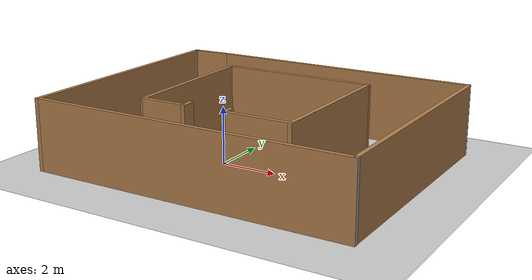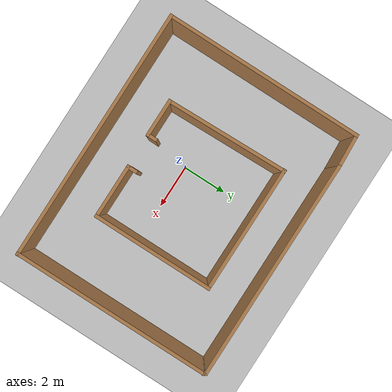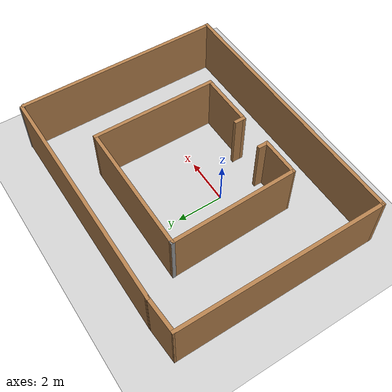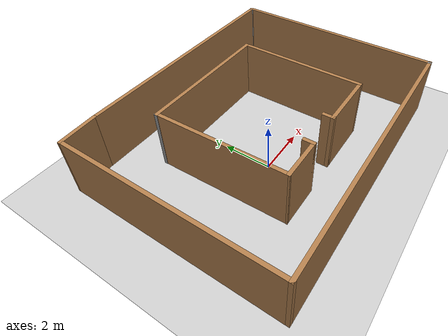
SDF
<sdf version='1.4'>
  <world name='default'>
    <!-- A global light source -->
    <include>
      <uri>model://sun</uri>
    </include>

    <!-- A ground plane -->
    <include>
      <uri>model://ground_plane</uri>
    </include>

    <physics type="ode">
      <real_time_update_rate>1000.0</real_time_update_rate>
      <max_step_size>0.001</max_step_size>
      <real_time_factor>1</real_time_factor>
      <ode>
        <solver>
          <type>quick</type>
          <iters>150</iters>
          <precon_iters>0</precon_iters>
          <sor>1.400000</sor>
          <use_dynamic_moi_rescaling>1</use_dynamic_moi_rescaling>
        </solver>
        <constraints>
          <cfm>0.00001</cfm>
          <erp>0.2</erp>
          <contact_max_correcting_vel>2000.000000</contact_max_correcting_vel>
          <contact_surface_layer>0.01000</contact_surface_layer>
        </constraints>
      </ode>
    </physics>

    <!-- Load world -->
    <include>
      <uri>model://waypoints_wall</uri>
    </include>

    <scene>
      <ambient>0.4 0.4 0.4 1</ambient>
      <background>0.7 0.7 0.7 1</background>
      <shadows>true</shadows>
    </scene>

    <gui fullscreen='0'>
      <camera name='user_camera'>
        <pose>0.8 0.0 12.0 0 1.5708 0</pose>
        <view_controller>orbit</view_controller>
      </camera>
    </gui>
  </world>
</sdf>

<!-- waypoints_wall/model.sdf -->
<sdf version='1.6'>
  <model name='waypoints_wall'>
    <pose frame=''>0.967753 0.769721 0 0 -0 0</pose>
    <link name='Wall_1'>
      <collision name='Wall_1_Collision'>
        <geometry>
          <box>
            <size>1.75 0.15 2.5</size>
          </box>
        </geometry>
        <pose frame=''>0 0 1.25 0 -0 0</pose>
      </collision>
      <visual name='Wall_1_Visual'>
        <pose frame=''>0 0 1.25 0 -0 0</pose>
        <geometry>
          <box>
            <size>1.75 0.15 2.5</size>
          </box>
        </geometry>
        <material>
          <script>
            <uri>file://media/materials/scripts/gazebo.material</uri>
            <name>Gazebo/Wood</name>
          </script>
          <ambient>1 1 1 1</ambient>
        </material>
        <meta>
          <layer>0</layer>
        </meta>
      </visual>
      <pose frame=''>-1.97775 -2.67972 0 0 -0 0</pose>
    </link>
    <link name='Wall_12'>
      <collision name='Wall_12_Collision'>
        <geometry>
          <box>
            <size>5.5 0.15 2.5</size>
          </box>
        </geometry>
        <pose frame=''>0 0 1.25 0 -0 0</pose>
      </collision>
      <visual name='Wall_12_Visual'>
        <pose frame=''>0 0 1.25 0 -0 0</pose>
        <geometry>
          <box>
            <size>5.5 0.15 2.5</size>
          </box>
        </geometry>
        <material>
          <script>
            <uri>file://media/materials/scripts/gazebo.material</uri>
            <name>Gazebo/Wood</name>
          </script>
          <ambient>1 1 1 1</ambient>
        </material>
        <meta>
          <layer>0</layer>
        </meta>
      </visual>
      <pose frame=''>2.68247 0.024048 0 0 -0 1.5708</pose>
    </link>
    <link name='Wall_13'>
      <collision name='Wall_13_Collision'>
        <geometry>
          <box>
            <size>5.75 0.15 2.5</size>
          </box>
        </geometry>
        <pose frame=''>0 0 1.25 0 -0 0</pose>
      </collision>
      <visual name='Wall_13_Visual'>
        <pose frame=''>0 0 1.25 0 -0 0</pose>
        <geometry>
          <box>
            <size>5.75 0.15 2.5</size>
          </box>
        </geometry>
        <material>
          <script>
            <uri>file://media/materials/scripts/gazebo.material</uri>
            <name>Gazebo/Wood</name>
          </script>
          <ambient>1 1 1 1</ambient>
        </material>
        <meta>
          <layer>0</layer>
        </meta>
      </visual>
      <pose frame=''>-0.117528 2.69905 0 0 -0 3.14159</pose>
    </link>
    <link name='Wall_14'>
      <collision name='Wall_14_Collision'>
        <geometry>
          <box>
            <size>0.16 0.15 2.5</size>
          </box>
        </geometry>
        <pose frame=''>0 0 1.25 0 -0 0</pose>
      </collision>
      <visual name='Wall_14_Visual'>
        <pose frame=''>0 0 1.25 0 -0 0</pose>
        <geometry>
          <box>
            <size>0.16 0.15 2.5</size>
          </box>
        </geometry>
        <material>
          <script>
            <uri>file://media/materials/scripts/gazebo.material</uri>
            <name>Gazebo/Grey</name>
          </script>
          <ambient>1 1 1 1</ambient>
        </material>
        <meta>
          <layer>0</layer>
        </meta>
      </visual>
      <pose frame=''>-2.91253 2.69905 0 0 -0 0</pose>
    </link>
    <link name='Wall_15'>
      <collision name='Wall_15_Collision'>
        <geometry>
          <box>
            <size>5.53033 0.15 2.5</size>
          </box>
        </geometry>
        <pose frame=''>0 0 1.25 0 -0 0</pose>
      </collision>
      <visual name='Wall_15_Visual'>
        <pose frame=''>0 0 1.25 0 -0 0</pose>
        <geometry>
          <box>
            <size>5.53033 0.15 2.5</size>
          </box>
        </geometry>
        <material>
          <script>
            <uri>file://media/materials/scripts/gazebo.material</uri>
            <name>Gazebo/Wood</name>
          </script>
          <ambient>1 1 1 1</ambient>
        </material>
        <meta>
          <layer>0</layer>
        </meta>
      </visual>
      <pose frame=''>-2.84264 0.009664 0 0 -0 -1.54667</pose>
    </link>
    <link name='Wall_18'>
      <collision name='Wall_18_Collision'>
        <geometry>
          <box>
            <size>10 0.15 2.5</size>
          </box>
        </geometry>
        <pose frame=''>0 0 1.25 0 -0 0</pose>
      </collision>
      <visual name='Wall_18_Visual'>
        <pose frame=''>0 0 1.25 0 -0 0</pose>
        <geometry>
          <box>
            <size>10 0.15 2.5</size>
          </box>
        </geometry>
        <material>
          <script>
            <uri>file://media/materials/scripts/gazebo.material</uri>
            <name>Gazebo/Wood</name>
          </script>
          <ambient>1 1 1 1</ambient>
        </material>
        <meta>
          <layer>0</layer>
        </meta>
      </visual>
      <pose frame=''>0.683458 4.45458 0 0 -0 0</pose>
    </link>
    <link name='Wall_19'>
      <collision name='Wall_19_Collision'>
        <geometry>
          <box>
            <size>0.25 0.15 2.5</size>
          </box>
        </geometry>
        <pose frame=''>0 0 1.25 0 -0 0</pose>
      </collision>
      <visual name='Wall_19_Visual'>
        <pose frame=''>0 0 1.25 0 -0 0</pose>
        <geometry>
          <box>
            <size>0.25 0.15 2.5</size>
          </box>
        </geometry>
        <material>
          <script>
            <uri>file://media/materials/scripts/gazebo.material</uri>
            <name>Gazebo/Grey</name>
          </script>
          <ambient>1 1 1 1</ambient>
        </material>
        <meta>
          <layer>0</layer>
        </meta>
      </visual>
      <pose frame=''>5.63346 4.41127 0 0 -0 -1.0472</pose>
    </link>
    <link name='Wall_2'>
      <collision name='Wall_2_Collision'>
        <geometry>
          <box>
            <size>0.5 0.15 2.5</size>
          </box>
        </geometry>
        <pose frame=''>0 0 1.25 0 -0 0</pose>
      </collision>
      <visual name='Wall_2_Visual'>
        <pose frame=''>0 0 1.25 0 -0 0</pose>
        <geometry>
          <box>
            <size>0.5 0.15 2.5</size>
          </box>
        </geometry>
        <material>
          <script>
            <uri>file://media/materials/scripts/gazebo.material</uri>
            <name>Gazebo/Wood</name>
          </script>
          <ambient>1 1 1 1</ambient>
        </material>
        <meta>
          <layer>0</layer>
        </meta>
      </visual>
      <pose frame=''>-1.17775 -2.50472 0 0 -0 1.5708</pose>
    </link>
    <link name='Wall_20'>
      <collision name='Wall_20_Collision'>
        <geometry>
          <box>
            <size>9 0.15 2.5</size>
          </box>
        </geometry>
        <pose frame=''>0 0 1.25 0 -0 0</pose>
      </collision>
      <visual name='Wall_20_Visual'>
        <pose frame=''>0 0 1.25 0 -0 0</pose>
        <geometry>
          <box>
            <size>9 0.15 2.5</size>
          </box>
        </geometry>
        <material>
          <script>
            <uri>file://media/materials/scripts/gazebo.material</uri>
            <name>Gazebo/Wood</name>
          </script>
          <ambient>1 1 1 1</ambient>
        </material>
        <meta>
          <layer>0</layer>
        </meta>
      </visual>
      <pose frame=''>5.65846 -0.057027 0 0 -0 -1.5708</pose>
    </link>
    <link name='Wall_21'>
      <collision name='Wall_21_Collision'>
        <geometry>
          <box>
            <size>0.16 0.15 2.5</size>
          </box>
        </geometry>
        <pose frame=''>0 0 1.25 0 -0 0</pose>
      </collision>
      <visual name='Wall_21_Visual'>
        <pose frame=''>0 0 1.25 0 -0 0</pose>
        <geometry>
          <box>
            <size>0.16 0.15 2.5</size>
          </box>
        </geometry>
        <material>
          <script>
            <uri>file://media/materials/scripts/gazebo.material</uri>
            <name>Gazebo/Grey</name>
          </script>
          <ambient>1 1 1 1</ambient>
        </material>
        <meta>
          <layer>0</layer>
        </meta>
      </visual>
      <pose frame=''>5.66346 -4.48203 0 0 -0 0</pose>
    </link>
    <link name='Wall_22'>
      <collision name='Wall_22_Collision'>
        <geometry>
          <box>
            <size>11.5 0.15 2.5</size>
          </box>
        </geometry>
        <pose frame=''>0 0 1.25 0 -0 0</pose>
      </collision>
      <visual name='Wall_22_Visual'>
        <pose frame=''>0 0 1.25 0 -0 0</pose>
        <geometry>
          <box>
            <size>11.5 0.15 2.5</size>
          </box>
        </geometry>
        <material>
          <script>
            <uri>file://media/materials/scripts/gazebo.material</uri>
            <name>Gazebo/Wood</name>
          </script>
          <ambient>1 1 1 1</ambient>
        </material>
        <meta>
          <layer>0</layer>
        </meta>
      </visual>
      <pose frame=''>-0.006542 -4.48203 0 0 -0 3.14159</pose>
    </link>
    <link name='Wall_23'>
      <collision name='Wall_23_Collision'>
        <geometry>
          <box>
            <size>9 0.15 2.5</size>
          </box>
        </geometry>
        <pose frame=''>0 0 1.25 0 -0 0</pose>
      </collision>
      <visual name='Wall_23_Visual'>
        <pose frame=''>0 0 1.25 0 -0 0</pose>
        <geometry>
          <box>
            <size>9 0.15 2.5</size>
          </box>
        </geometry>
        <material>
          <script>
            <uri>file://media/materials/scripts/gazebo.material</uri>
            <name>Gazebo/Wood</name>
          </script>
          <ambient>1 1 1 1</ambient>
        </material>
        <meta>
          <layer>0</layer>
        </meta>
      </visual>
      <pose frame=''>-5.68154 -0.057027 0 0 -0 1.5708</pose>
    </link>
    <link name='Wall_24'>
      <collision name='Wall_24_Collision'>
        <geometry>
          <box>
            <size>1.5926 0.15 2.5</size>
          </box>
        </geometry>
        <pose frame=''>0 0 1.25 0 -0 0</pose>
      </collision>
      <visual name='Wall_24_Visual'>
        <pose frame=''>0 0 1.25 0 -0 0</pose>
        <geometry>
          <box>
            <size>1.5926 0.15 2.5</size>
          </box>
        </geometry>
        <material>
          <script>
            <uri>file://media/materials/scripts/gazebo.material</uri>
            <name>Gazebo/Wood</name>
          </script>
          <ambient>1 1 1 1</ambient>
        </material>
        <meta>
          <layer>0</layer>
        </meta>
      </visual>
      <pose frame=''>-4.96154 4.41127 0 0 -0 0.060068</pose>
    </link>
    <link name='Wall_6'>
      <collision name='Wall_6_Collision'>
        <geometry>
          <box>
            <size>0.5 0.15 2.5</size>
          </box>
        </geometry>
        <pose frame=''>0 0 1.25 0 -0 0</pose>
      </collision>
      <visual name='Wall_6_Visual'>
        <pose frame=''>0 0 1.25 0 -0 0</pose>
        <geometry>
          <box>
            <size>0.5 0.15 2.5</size>
          </box>
        </geometry>
        <material>
          <script>
            <uri>file://media/materials/scripts/gazebo.material</uri>
            <name>Gazebo/Wood</name>
          </script>
          <ambient>1 1 1 1</ambient>
        </material>
        <meta>
          <layer>0</layer>
        </meta>
      </visual>
      <pose frame=''>0.332472 -2.47595 0 0 -0 -1.5708</pose>
    </link>
    <link name='Wall_7'>
      <collision name='Wall_7_Collision'>
        <geometry>
          <box>
            <size>2.5 0.15 2.5</size>
          </box>
        </geometry>
        <pose frame=''>0 0 1.25 0 -0 0</pose>
      </collision>
      <visual name='Wall_7_Visual'>
        <pose frame=''>0 0 1.25 0 -0 0</pose>
        <geometry>
          <box>
            <size>2.5 0.15 2.5</size>
          </box>
        </geometry>
        <material>
          <script>
            <uri>file://media/materials/scripts/gazebo.material</uri>
            <name>Gazebo/Wood</name>
          </script>
          <ambient>1 1 1 1</ambient>
        </material>
        <meta>
          <layer>0</layer>
        </meta>
      </visual>
      <pose frame=''>1.50747 -2.65095 0 0 -0 0</pose>
    </link>
    <static>1</static>
  </model>
</sdf>
